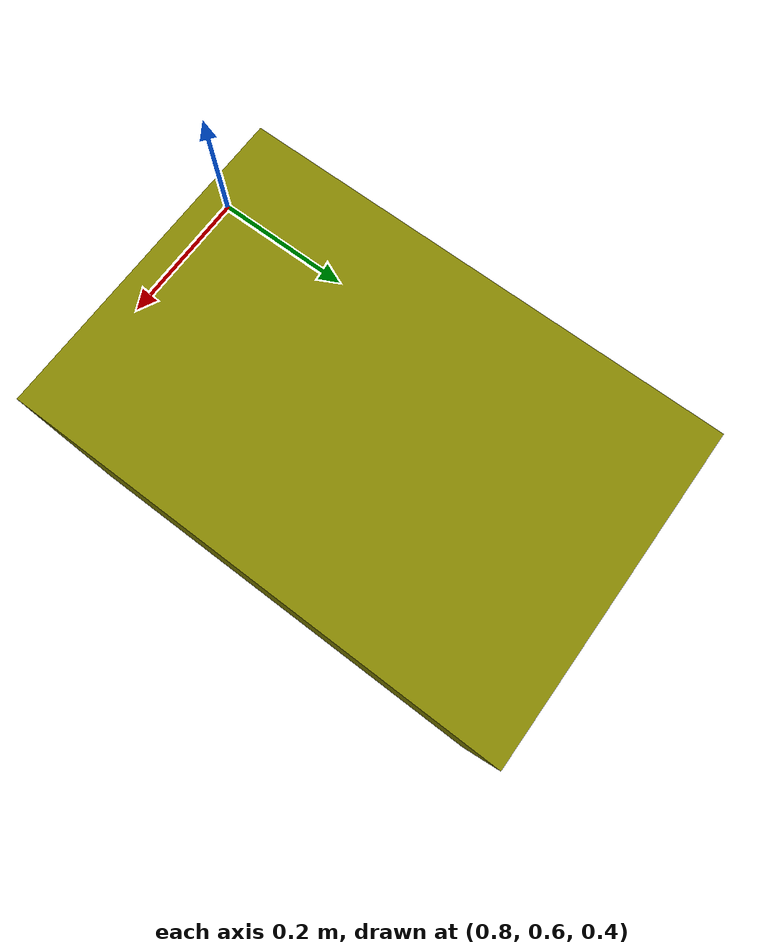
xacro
<?xml version="1.0" ?>
<robot name="box"  xmlns:xacro="http://www.ros.org/wiki/xacro" >
    <xacro:arg name="obstacle_x" default="1.0"/>
    <xacro:arg name="obstacle_y" default="1.0"/>
    <xacro:arg name="obstacle_z" default="0.5"/>
    <xacro:arg name="obstacle_size" default="0.5"/>

    <xacro:property name="obstacle_x" default="$(arg obstacle_x)"/>
    <xacro:property name="obstacle_y" default="$(arg obstacle_y)"/>
    <xacro:property name="obstacle_z" default="$(arg obstacle_z)"/>
    <xacro:property name="obstacle_size" default="$(arg obstacle_size)"/>

    <link name="world"/>
    <joint name="fixed" type="fixed">
        <parent link="world"/>
        <child link="obstacle"/>
        <origin xyz="${obstacle_x} ${obstacle_y} ${obstacle_z}" rpy="0 0 0"/>
    </joint>

    <link name="obstacle">
        <visual>
            <origin rpy="0 0 0" xyz="0 0 0"/>
            <geometry>
                <box size="0.4 0.6 0.34"/>
            </geometry>
            <material name="box_material">
                <color rgba="0.5 0.5 0.0 1"/>
            </material>
        </visual>
        <collision>
            <origin rpy="0 0 0" xyz="0 0 0"/>
            <geometry>
                <box size="0.4 0.6 0.34"/>
            </geometry>
        </collision>
    </link>
</robot>
